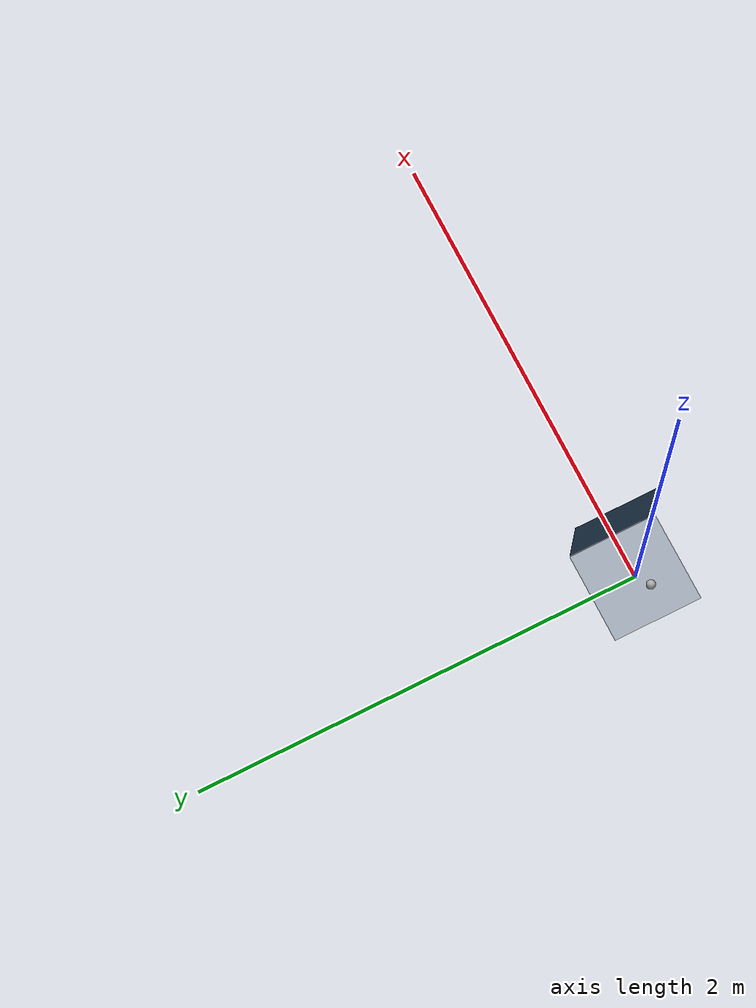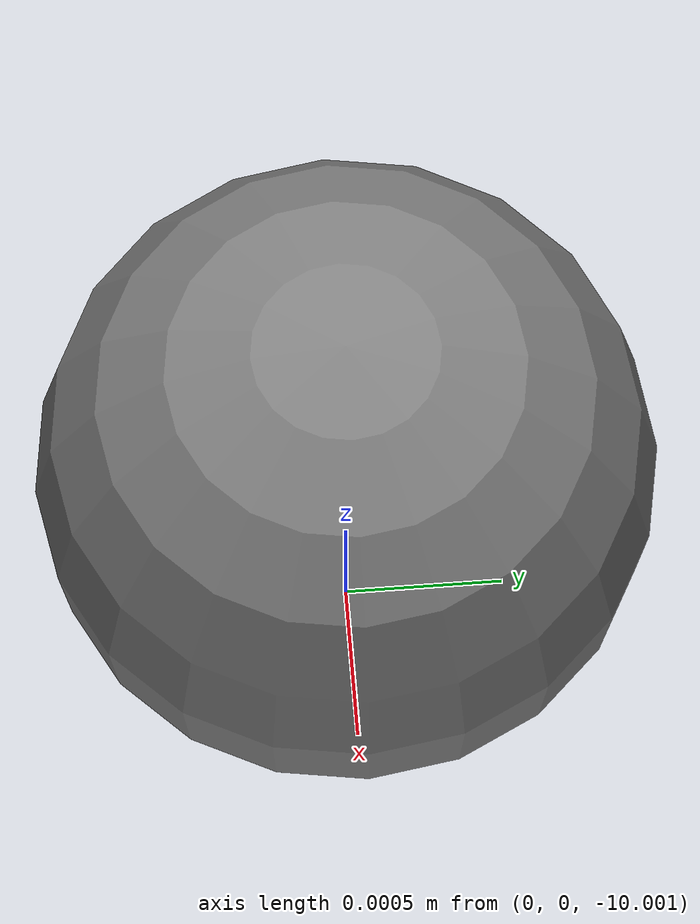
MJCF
<mujoco model="ping_pong">
  <!-- MJX-compatible version of ping_pong.xml (no fluid drag: MJX does not support implicitfast + density/viscosity).
       The repo-root ping_pong.xml has density/viscosity for the interactive viewer. -->
  <option cone="elliptic" timestep="1e-4" integrator="implicitfast"/>

  <visual>
    <global elevation="0"/>
  </visual>

  <asset>
    <texture name="grid" type="2d" builtin="checker" rgb1=".1 .2 .3" rgb2=".2 .3 .4" width="300" height="300"/>
    <material name="grid" texture="grid" texrepeat="8 8" reflectance=".2"/>
    <texture name="ball" type="cube" builtin="checker" rgb1=".3 .3 .3" rgb2="1 1 1" width="300" height="300"/>
    <material name="ball" texture="ball" texrepeat="8 8"/>
  </asset>

  <worldbody>
    <!-- Dummy body/actuator so MJX has nu>=1 (avoids internal shape issues with nu=0) -->
    <body name="dummy_act" pos="0 0 -10">
      <joint name="dummy_joint" type="slide" axis="0 0 1" range="-0.001 0.001"/>
      <geom name="dummy_geom" type="sphere" size="0.001" contype="0" conaffinity="0"/>
    </body>
    <geom name="floor" size=".2 .2 .01" type="plane" material="grid"/>
    <geom name="wall" size=".2 .2 .01" type="plane" material="grid" pos=".2 0 .2" zaxis="-1 0 0"/>
    <light pos="0 0 .6"/>
    <light pos="-.6 0 .6" dir="1 0 -1"/>
    <body name="ball" pos="-.1 0 .2">
      <freejoint/>
      <geom name="ball" type="sphere" size=".02" material="ball" mass=".0027"/>
      <body name="ballast">
        <joint type="ball" stiffness="0.1" damping=".0001"/>
        <geom name="ballast" type="sphere" size=".02" contype="0" conaffinity="0" mass=".01" group="3"/>
      </body>
    </body>
  </worldbody>

  <default>
    <pair solref="-100000 0" solreffriction="0 -10000"/>
  </default>

  <contact>
    <pair geom1="floor" geom2="ball"/>
    <pair geom1="wall" geom2="ball"/>
  </contact>

  <actuator>
    <position name="dummy_act" joint="dummy_joint" kp="0.001" kv="0.001" ctrlrange="-0.001 0.001" forcerange="-0.001 0.001"/>
  </actuator>

  <keyframe>
    <key name="throw" qvel="1.3 0 0 0 0 0 0 0 0"/>
  </keyframe>
</mujoco>
